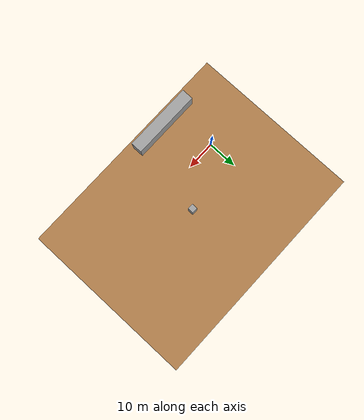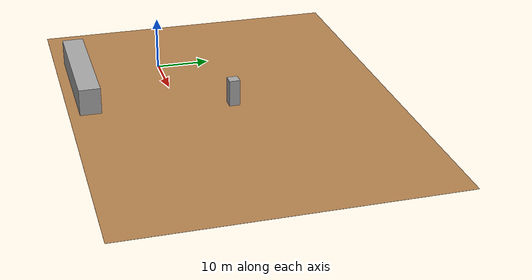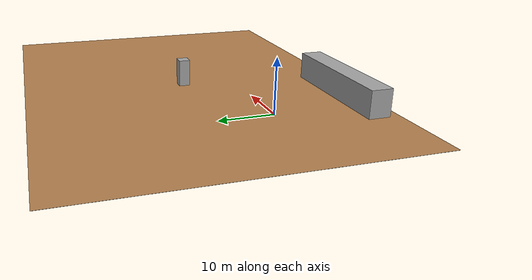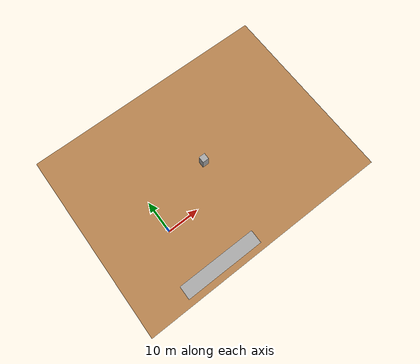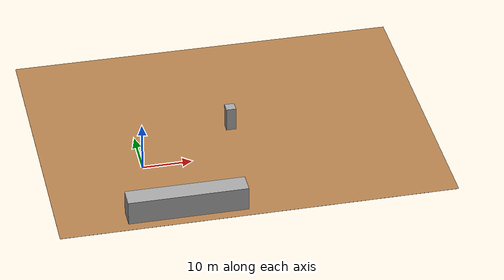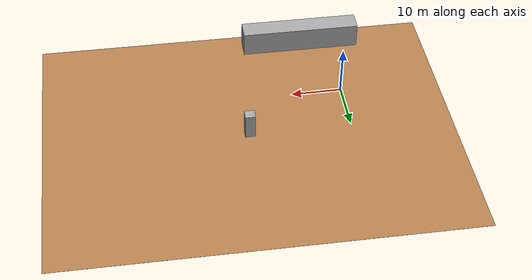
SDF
<?xml version="1.0" ?>
<sdf version="1.5">
 <world name="outdoor_space">
  <include>
    <uri>model://outdoor_space</uri>
    <name>outdoor_space</name>
    <pose>20 10 0 0 0 0</pose>
  </include>

  <include>
     <uri>model://sun</uri>
   <pose>0 0 30 0 0 0</pose>
   </include>

 </world>
</sdf>

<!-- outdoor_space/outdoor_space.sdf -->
<sdf version="1.5">
 <model name="outdoor_space">
   <static>true</static>
   <link name="outdoor_surf">
    <collision name="outdoor_collision">
     <geometry>
       <mesh>
         <uri>model://outdoor_space/meshes/ground.dae</uri>
       </mesh>
     </geometry>

    </collision>

     <visual name="surface_mesh">
      <cast_shadows>true</cast_shadows>
      <geometry>
       <mesh>
         <uri>model://outdoor/meshes/ground.dae</uri>
       </mesh>
      </geometry>
      <material>
            <script>
              <uri>file://media/materials/scripts/gazebo.material</uri>
              <name>Gazebo/Wood</name>
            </script>
          </material>
     </visual>
   </link>

<static>true</static>
   <link name="outdoor_building1">
    <collision name="building1_collision">
     <geometry>
       <mesh>
         <uri>model://outdoor_space/meshes/building1.dae</uri>
       </mesh>
     </geometry>
    </collision>

     <visual name="building1_mesh">
      <cast_shadows>true</cast_shadows>
      <geometry>
       <mesh>
         <uri>model://outdoor_space/meshes/building1.dae</uri>
       </mesh>
      </geometry>
      <material>
        <script>
            <uri>model://outdoor_space/materials/scripts</uri>
          <uri>model://outdoor_space/materials/textures</uri>
          <name>outdoor_space/building</name>
        </script>
      </material>
     </visual>
   </link>

<static>true</static>
   <link name="outdoor_building2">
    <collision name="building2_collision">
     <geometry>
       <mesh>
         <uri>model://outdoor_space/meshes/building2.dae</uri>
       </mesh>
     </geometry>
    </collision>

     <visual name="building2_mesh">
      <cast_shadows>true</cast_shadows>
      <geometry>
       <mesh>
         <uri>model://outdoor_space/meshes/building2.dae</uri>
       </mesh>
      </geometry>
      <material>
        <script>
          <uri>model://outdoor_space/materials/scripts</uri>
          <uri>model://outdoor_space/materials/textures</uri>
          <name>outdoor_space/building</name>
        </script>
      </material>
     </visual>
   </link>
 </model>
</sdf>
